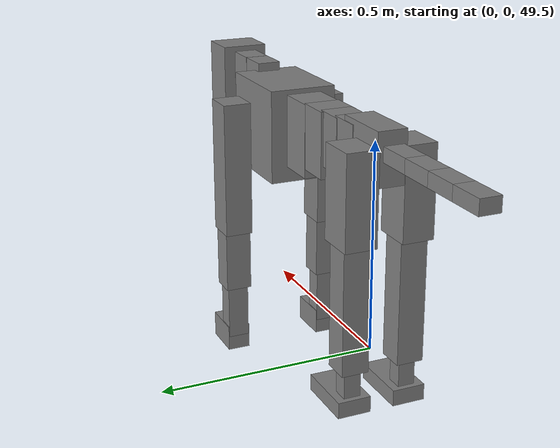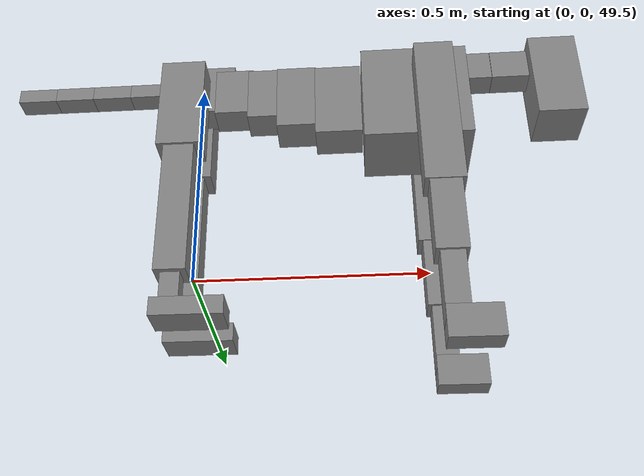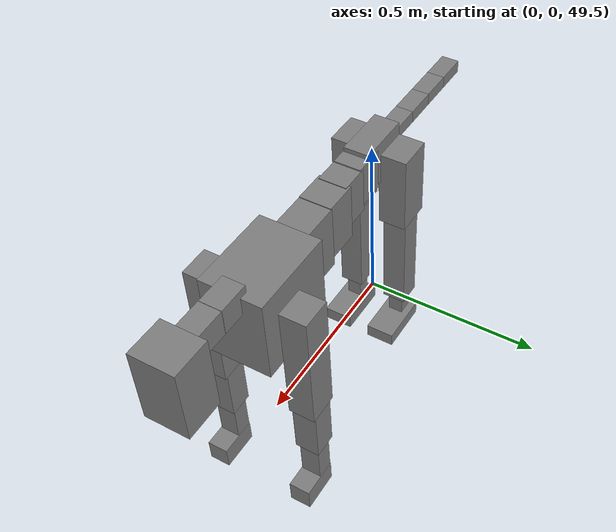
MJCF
<mujoco model="dog">

    <default>
        <joint armature="0.02" stiffness="1" damping="0.2" limited="true"/>
        <geom condim="3" friction="1 0.05 0.05" margin="0.01"/>
        <motor ctrllimited="true" ctrlrange="-1.0 1.0" forcelimited="true" gear="50"/>
    </default>

    <compiler inertiafromgeom="true" angle="radian"/>

    <option timestep="0.016" iterations="50" tolerance="1e-10" solver="Newton" jacobian="dense" cone="pyramidal"/>

    <size nconmax="20000" njmax="60000" nstack="5000000"/>
    <visual>
        <map force="0.1" zfar="30"/>
        <rgba haze="0.15 0.25 0.35 1"/>
        <quality shadowsize="2048"/>
        <global offwidth="800" offheight="800"/>
    </visual>

    <asset>
        <texture type="skybox" builtin="gradient" rgb1="0.3 0.5 0.7" rgb2="0 0 0" width="512" height="512"/>
        <texture name="texplane" type="2d" builtin="checker" rgb1=".2 .3 .4" rgb2=".1 0.15 0.2" width="512" height="512"
                 mark="cross" markrgb=".8 .8 .8"/>
        <texture name="texgeom" type="cube" builtin="flat" mark="cross" width="127" height="1278" rgb1="0.8 0.6 0.4"
                 rgb2="0.8 0.6 0.4" markrgb="1 1 1" random="0.01"/>

        <material name="matplane" reflectance="0.3" texture="texplane" texrepeat="1 1" texuniform="true"/>
        <material name="matgeom" texture="texgeom" texuniform="true" rgba="0.8 0.6 .4 1"/>
    </asset>

    <worldbody>
        <geom name="floor" pos="0 0 0" size="0 0 .25" type="plane" material="matplane" condim="3"/>

        <light directional="false" diffuse=".2 .2 .2" specular="0 0 0" pos="0 0 5" dir="0 0 -1" castshadow="false"/>
        <light mode="targetbodycom" target="torso" directional="false" diffuse=".8 .8 .8" specular="0.3 0.3 0.3"
               pos="0 0 4.0" dir="0 0 -1"/>

        <body name="root" pos="0 0 50">
            <freejoint name="root_1"/>
            <geom type="box" pos="0 0 -0.02" size="0.0774  0.0358  0.063" density="2030"/>

            <body name="spine1" pos="0.054 0 0">
                <joint name="spine1_y" axis="0 1 0" range="0 0.7" limited="true"/>
                <geom type="box" pos="0.02375 0 -0.03" size="0.04375  0.0375  0.05985" density="2030"/>

                <body name="spine2" pos="0.0612 0 0">
                    <joint name="spine2_y" axis="0 1 0" range="-0.15 0.15" limited="true"/>
                    <geom type="box" pos="0.03555  0  -0.04" size="0.04055  0.039  0.06615" density="2030"/>

                    <body name="spine3" pos="0.0730 0 0">
                        <joint name="spine3_y" axis="0 1 0" range="-0.15 0.15" limited="true"/>
                        <geom type="box" pos="0.03555  0  -0.057" size="0.04555  0.0445  0.081" density="2030"/>

                        <body name="spine4" pos="0.0780 0 0">
                            <joint name="spine4_y" axis="0 1 0" range="-0.15 0.15" limited="true"/>
                            <geom type="box" pos="0.05265  0  -0.07" size="0.05265  0.045  0.09135" density="2030"/>

                            <body name="torso" pos="0.1082 0 0">
                                <joint name="torso_y" axis="0 1 0" range="-0.15 0.15" limited="true"/>
                                <geom type="box" pos="0.11925  0  -0.085" size="0.11925  0.085  0.11745"
                                      density="2030"/>

                                <body name="neck1" pos="0.2160  0   0.0180">
                                    <joint name="neck1_y" axis="0 1 0" range="-1.2  -1" limited="true"/>
                                    <geom type="box" pos="0.0423  0  0" size="0.0423  0.03  0.036" density="2325"/>

                                    <body name="neck2" pos="0.0853  0  0">
                                        <joint name="neck2_y" axis="0 1 0" range="0.1  0" limited="true"/>
                                        <geom type="box" pos="0.0423  0  0" size="0.0423  0.03  0.036" density="2325"/>

                                        <body name="head" pos="0.0853  0  0">
                                            <joint name="head_y" axis="0 1 0" range="-0.3  -0.2" limited="true"/>
                                            <geom type="box" pos="0.0531  0  -0.055" size="0.0531  0.06  0.1044"
                                                  density="4030"/>

                                        </body>
                                    </body>
                                </body>

                                <body name="front_shoulder" pos="0.156  0   -0.0480">
                                    <joint name="front_shoulder_y" axis="0 1 0" range="-1 1.5" limited="true"/>
                                    <geom type="box" pos="0 0.13 -0.1480" size="0.0421  0.0359  0.1746" density="1158"/>
                                    <geom type="box" pos="0 -0.13 -0.1480" size="0.0421  0.0359  0.1746"
                                          density="1158"/>

                                    <body name="front_elbow" pos="0  0  -0.2960">
                                        <joint name="front_elbow_y" axis="0 1 0" range="-2 0" limited="true"/>
                                        <geom type="box" pos="0 0.13 -0.0919" size="0.0329  0.0336  0.0919"
                                              density="1081"/>
                                        <geom type="box" pos="0 -0.13 -0.0919" size="0.0329  0.0336  0.0919"
                                              density="1081"/>

                                        <body name="front_wrist" pos="0  0  -0.1838">
                                            <joint name="front_wrist_y" axis="0 1 0" range="-0.2 0" limited="true"/>
                                            <geom type="box" pos="0 0.13 -0.0639" size="0.0247  0.0274  0.0770"
                                                  density="1664"/>
                                            <geom type="box" pos="0 -0.13 -0.0639" size="0.0247  0.0274  0.0770"
                                                  density="1664"/>

                                            <body name="front_finger_end" pos="0  0  -0.1278">
                                                <joint name="front_finger_y" axis="0 1 0" range="-0.4 1"
                                                       limited="true"/>
                                                <geom type="box" pos="0.0294  0.13  -0.0181"
                                                      size="0.0538  0.0294  0.0331" density="1515"/>
                                                <geom type="box" pos="0.0294  -0.13  -0.0181"
                                                      size="0.0538  0.0294  0.0331" density="1515"/>

                                            </body>

                                        </body>
                                    </body>
                                </body>

                            </body>
                        </body>
                    </body>
                </body>
            </body>

            <body name="back_hip" pos="-0.03 0 -0.018">
                <joint name="back_hip_y" axis="0 1 0" range="-1.5 0.3" limited="true"/>
                <geom type="box" pos="0 0.07 -0.0889" size="0.0496  0.0389  0.1117" density="1154"/>
                <geom type="box" pos="0 -0.07 -0.0889" size="0.0496  0.0389  0.1117" density="1154"/>

                <body name="back_knee" pos="0  0  -0.1779">
                    <joint name="back_knee_y" axis="0 1 0" range="0 2.8" limited="true"/>
                    <geom type="box" pos="0 0.07 -0.1550" size="0.0336  0.0331  0.1705" density="1227"/>
                    <geom type="box" pos="0 -0.07 -0.1550" size="0.0336  0.0331  0.1705" density="1227"/>

                    <body name="back_ankle" pos="0  0  -0.3100">
                        <joint name="back_ankle_y" axis="0 1 0" range="-2.2 0" limited="true"/>
                        <geom type="box" pos="0 0.07 -0.0470" size="0.0206  0.0206  0.0582" density="1284"/>
                        <geom type="box" pos="0 -0.07 -0.0470" size="0.0206  0.0206  0.0582" density="1284"/>

                        <body name="back_toe_end" pos="0  0  -0.0940">
                            <joint name="back_toe_y" axis="0 1 0" range="-0.4 1" limited="true"/>
                            <geom type="box" pos="0.0407  0.07  -0.0047" size="0.0747  0.0407  0.0197" density="1515"/>
                            <geom type="box" pos="0.0407  -0.07  -0.0047" size="0.0747  0.0407  0.0197" density="1515"/>

                        </body>
                    </body>
                </body>
            </body>

            <body name="tail1" pos="-0.074 0 -0.006">
                <joint name="tail1_y" axis="0 1 0" range="-0.2 0.2" limited="true"/>
                <geom type="box" pos="-0.0536  0  0" size="0.045  0.025  0.0175" density="1587"/>

                <body name="tail2" pos="-0.09 0 0">
                    <joint name="tail2_y" axis="0 1 0" range="-0.2 0.2" limited="true"/>
                    <geom type="box" pos="-0.0536  0  0" size="0.045  0.025  0.0175" density="1587"/>

                    <body name="tail3" pos="-0.09 0 0">
                        <joint name="tail3_y" axis="0 1 0" range="-0.2 0.2" limited="true"/>
                        <geom type="box" pos="-0.0536  0  0" size="0.045  0.025  0.0175" density="1587"/>

                        <body name="tail4" pos="-0.09 0 0">
                            <joint name="tail4_y" axis="0 1 0" range="-0.2 0.2" limited="true"/>
                            <geom type="box" pos="-0.0536  0  0" size="0.045  0.025  0.0175" density="1587"/>

                        </body>
                    </body>
                </body>
            </body>
        </body>
    </worldbody>

    <actuator>
        <motor joint="spine1_y" forcerange="-150 150     "/>
        <motor joint="spine2_y" forcerange="-150 150     "/>
        <motor joint="spine3_y" forcerange="-150 150     "/>
        <motor joint="spine4_y" forcerange="-150 150     "/>
        <motor joint="torso_y" forcerange="-150 150     "/>
        <motor joint="neck1_y" forcerange="-100 100       "/>
        <motor joint="neck2_y" forcerange="-100 100       "/>
        <motor joint="head_y" forcerange="-150 150       "/>
        <motor joint="front_shoulder_y" forcerange="-174.03 165.63"/>
        <motor joint="front_elbow_y" forcerange="-160.63 184.01"/>
        <motor joint="front_wrist_y" forcerange="-120.56 98.71"/>
        <motor joint="front_finger_y" forcerange="-37.41 79.17"/>
        <motor joint="back_hip_y" forcerange="-348.21 370.00"/>
        <motor joint="back_knee_y" forcerange="-320.33 361.05"/>
        <motor joint="back_angle_y" forcerange="-114.31 114.85"/>
        <motor joint="back_toe_y" forcerange="-115.61 130.17"/>
        <motor joint="tail1_y" forcerange="-50 50     "/>
        <motor joint="tail2_y" forcerange="-50 50     "/>
        <motor joint="tail3_y" forcerange="-50 50     "/>
        <motor joint="tail4_y" forcerange="-50 50     "/>
    </actuator>
</mujoco>
